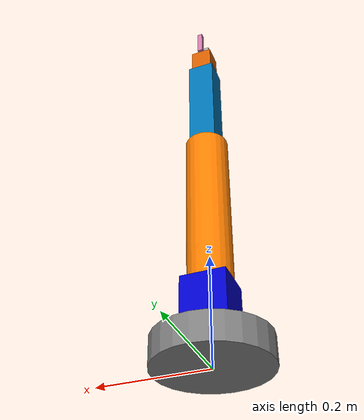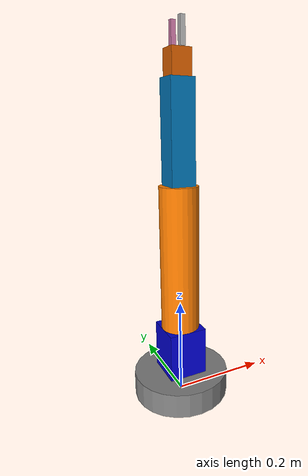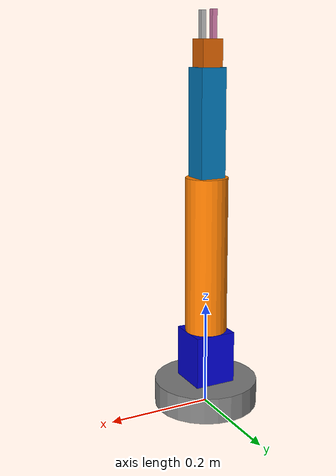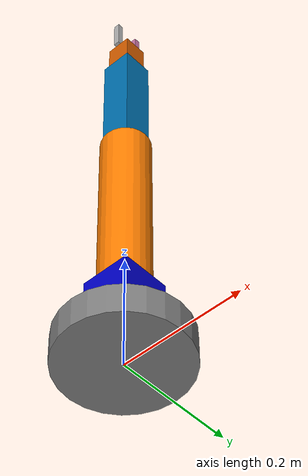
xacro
<?xml version="1.0"?>
<robot xmlns:xacro="http://www.ros.org/wiki/xacro" name="arm">
    <xacro:arg name="initial_positions_file" default="initial_positions.yaml" />

    <!-- Import arm urdf file -->
    <xacro:include filename="$(find arm)/urdf/arm.urdf.xacro" />

    <!-- Import control_xacro -->
    <xacro:include filename="arm.ros2_control.xacro" />

    <xacro:arm_ros2_control name="FakeSystem" initial_positions_file="$(arg initial_positions_file)"/>

</robot>

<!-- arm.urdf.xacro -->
<robot xmlns:xacro="http://www.ros.org/wiki/xacro" name="arm">

  <!-- ================= MATERIAL DEFINITIONS ================= -->
  <material name="grey">
    <color rgba="0.5 0.5 0.5 1.0"/>
  </material>
  <material name="blue">
    <color rgba="0.0 0.0 0.8 1.0"/>
  </material>
  <material name="orange">
    <color rgba="1.0 0.5 0.0 1.0"/>
  </material>

  <!-- ================= 1. WORLD / BASE FIXED LINK ================= -->
  <link name="world"/>

  <joint name="virtual_joint" type="fixed">
    <parent link="world"/>
    <child link="base_link"/>
    <origin xyz="0 0 0" rpy="0 0 0"/>
  </joint>

  <link name="base_link">
    <visual>
      <geometry>
        <cylinder radius="0.1" length="0.05"/>
      </geometry>
      <material name="grey"/>
      <origin xyz="0 0 0.025" rpy="0 0 0"/>
    </visual>
    <collision>
      <geometry>
        <cylinder radius="0.1" length="0.05"/>
      </geometry>
      <origin xyz="0 0 0.025" rpy="0 0 0"/>
    </collision>
    <inertial>
      <mass value="2.0"/>
      <origin xyz="0 0 0.025" rpy="0 0 0"/>
      <inertia ixx="0.005" ixy="0.0" ixz="0.0" iyy="0.005" iyz="0.0" izz="0.01"/>
    </inertial>
  </link>

  <!-- ================= 2. JOINT 1: SHOULDER ROTATION (Yaw) ================= -->
  <link name="shoulder_link">
    <visual>
      <geometry>
        <box size="0.08 0.08 0.1"/>
      </geometry>
      <material name="blue"/>
      <origin xyz="0 0 0.05" rpy="0 0 0"/>
    </visual>
    <collision>
      <geometry>
        <box size="0.08 0.08 0.1"/>
      </geometry>
      <origin xyz="0 0 0.05" rpy="0 0 0"/>
    </collision>
    <inertial>
      <mass value="0.8"/>
      <origin xyz="0 0 0.05" rpy="0 0 0"/>
      <inertia ixx="0.001" ixy="0.0" ixz="0.0" iyy="0.001" iyz="0.0" izz="0.001"/>
    </inertial>
  </link>

  <joint name="joint_1" type="revolute">
    <parent link="base_link"/>
    <child link="shoulder_link"/>
    <origin xyz="0 0 0.05" rpy="0 0 0"/>
    <axis xyz="0 0 1"/>
    <limit lower="-3.14159" upper="3.14159" effort="10.0" velocity="1.5"/>
  </joint>

  <!-- ================= 3. JOINT 2: SHOULDER PITCH ================= -->
  <link name="upper_arm_link">
    <visual>
      <geometry>
        <cylinder radius="0.04" length="0.3"/>
      </geometry>
      <material name="orange"/>
      <origin xyz="0 0 0.15" rpy="0 0 0"/>
    </visual>
    <collision>
      <geometry>
        <cylinder radius="0.04" length="0.3"/>
      </geometry>
      <origin xyz="0 0 0.15" rpy="0 0 0"/>
    </collision>
    <inertial>
      <mass value="1.0"/>
      <origin xyz="0 0 0.15" rpy="0 0 0"/>
      <inertia ixx="0.008" ixy="0.0" ixz="0.0" iyy="0.008" iyz="0.0" izz="0.001"/>
    </inertial>
  </link>

  <joint name="joint_2" type="revolute">
    <parent link="shoulder_link"/>
    <child link="upper_arm_link"/>
    <origin xyz="0 0 0.1" rpy="0 0 0"/>
    <axis xyz="0 1 0"/>
    <limit lower="-1.5707" upper="1.5707" effort="15.0" velocity="1.5"/>
  </joint>

  <!-- ================= 4. JOINT 3 & LINK 3 (Elbow) ================= -->
  <link name="forearm_link">
    <visual>
      <geometry><box size="0.05 0.05 0.2"/></geometry>
      <origin xyz="0 0 0.1" rpy="0 0 0"/>
    </visual>
    <collision>
      <geometry><box size="0.05 0.05 0.2"/></geometry>
      <origin xyz="0 0 0.1" rpy="0 0 0"/>
    </collision>
    <inertial>
      <mass value="0.5"/>
      <origin xyz="0 0 0.1" rpy="0 0 0"/>
      <inertia ixx="0.001" ixy="0.0" ixz="0.0" iyy="0.001" iyz="0.0" izz="0.001"/>
    </inertial>
  </link>

  <joint name="joint_3" type="revolute">
    <parent link="upper_arm_link"/>
    <child link="forearm_link"/>
    <origin xyz="0 0 0.3" rpy="0 0 0"/>
    <axis xyz="0 1 0"/>
    <limit lower="-2.0" upper="2.0" effort="10.0" velocity="1.5"/>
  </joint>

  <!-- ================= 5. JOINT 4 & LINK 4 (Wrist) ================= -->
  <link name="wrist_link">
    <visual>
      <geometry><box size="0.04 0.04 0.05"/></geometry>
      <origin xyz="0 0 0.025" rpy="0 0 0"/>
    </visual>
    <collision>
      <geometry><box size="0.04 0.04 0.05"/></geometry>
      <origin xyz="0 0 0.025" rpy="0 0 0"/>
    </collision>
    <inertial>
      <mass value="0.2"/>
      <origin xyz="0 0 0.025" rpy="0 0 0"/>
      <inertia ixx="0.0001" ixy="0.0" ixz="0.0" iyy="0.0001" iyz="0.0" izz="0.0001"/>
    </inertial>
  </link>

  <joint name="joint_4" type="revolute">
    <parent link="forearm_link"/>
    <child link="wrist_link"/>
    <origin xyz="0 0 0.2" rpy="0 0 0"/>
    <axis xyz="0 0 1"/>
    <limit lower="-1.57" upper="1.57" effort="5.0" velocity="1.5"/>
  </joint>

  <!-- ================= 6. GRIPPER FINGERS (Inertials & Collisions Added) ================= -->
  <link name="left_finger">
    <visual>
      <geometry><box size="0.01 0.01 0.05"/></geometry>
      <origin xyz="0 0 0.025" rpy="0 0 0"/>
    </visual>
    <collision>
      <geometry><box size="0.01 0.01 0.05"/></geometry>
      <origin xyz="0 0 0.025" rpy="0 0 0"/>
    </collision>
    <inertial>
      <mass value="0.05"/>
      <origin xyz="0 0 0.025" rpy="0 0 0"/>
      <inertia ixx="0.00001" ixy="0.0" ixz="0.0" iyy="0.00001" iyz="0.0" izz="0.00001"/>
    </inertial>
  </link>

  <joint name="left_finger_joint" type="prismatic">
    <parent link="wrist_link"/>
    <child link="left_finger"/>
    <origin xyz="0 0.02 0.05" rpy="0 0 0"/>
    <axis xyz="0 1 0"/>
    <limit lower="0.0" upper="0.03" effort="5.0" velocity="0.5"/>
  </joint>

  <link name="right_finger">
    <visual>
      <geometry><box size="0.01 0.01 0.05"/></geometry>
      <origin xyz="0 0 0.025" rpy="0 0 0"/>
    </visual>
    <collision>
      <geometry><box size="0.01 0.01 0.05"/></geometry>
      <origin xyz="0 0 0.025" rpy="0 0 0"/>
    </collision>
    <inertial>
      <mass value="0.05"/>
      <origin xyz="0 0 0.025" rpy="0 0 0"/>
      <inertia ixx="0.00001" ixy="0.0" ixz="0.0" iyy="0.00001" iyz="0.0" izz="0.00001"/>
    </inertial>
  </link>

  <joint name="right_finger_joint" type="prismatic">
    <parent link="wrist_link"/>
    <child link="right_finger"/>
    <origin xyz="0 -0.02 0.05" rpy="0 0 0"/>
    <axis xyz="0 -1 0"/>
    <limit lower="0.0" upper="0.03" effort="5.0" velocity="0.5"/>
  </joint>

<ros2_control name="GazeboSimSystem" type="system">
    <hardware>
      <plugin>gz_ros2_control/GazeboSimSystem</plugin>
    </hardware>

    <joint name="joint_1">
      <command_interface name="position"><param name="min">-3.1415</param><param name="max">3.1415</param></command_interface>
      <state_interface name="position"/><state_interface name="velocity"/>
    </joint>

    <joint name="joint_2">
      <command_interface name="position"><param name="min">-1.5707</param><param name="max">1.5707</param></command_interface>
      <state_interface name="position"/><state_interface name="velocity"/>
    </joint>

    <joint name="joint_3">
      <command_interface name="position"><param name="min">-2.0</param><param name="max">2.0</param></command_interface>
      <state_interface name="position"/><state_interface name="velocity"/>
    </joint>

    <joint name="joint_4">
      <command_interface name="position"><param name="min">-1.57</param><param name="max">1.57</param></command_interface>
      <state_interface name="position"/><state_interface name="velocity"/>
    </joint>

    <joint name="left_finger_joint">
      <command_interface name="position"><param name="min">0.0</param><param name="max">0.03</param></command_interface>
      <state_interface name="position"/>
    </joint>

    <joint name="right_finger_joint">
      <command_interface name="position"><param name="min">0.0</param><param name="max">0.03</param></command_interface>
      <state_interface name="position"/>
    </joint>
  </ros2_control>

  <!-- ================= MODERN GAZEBO ROS2_CONTROL PLUGIN ================= -->
  <gazebo>
    <plugin filename="libgz_ros2_control-system.so" name="gz_ros2_control::GazeboSimROS2ControlPlugin">
      <parameters>$(find arm)/config/controllers.yaml</parameters>
    </plugin>
  </gazebo>

</robot>
